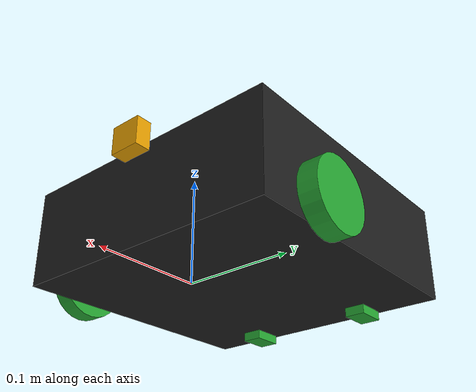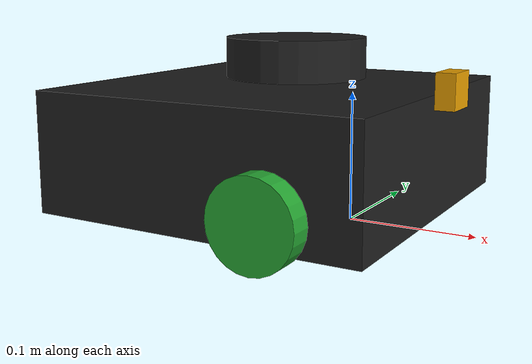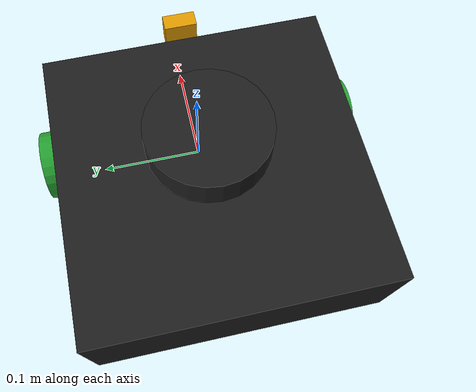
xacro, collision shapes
<?xml version="1.0" ?>
<robot name="p_jfernandes" xmlns:xacro="http://ros.org/wiki/xacro">
    <xacro:include filename="$(find turtlebot3_description)/urdf/common_properties.xacro"/>
    <xacro:include filename="$(find green_turtlebot3)/urdf/green_turtlebot3.gazebo.xacro"/>
    <xacro:property name="top_length" value="0.03"/>

    <xacro:property name="robot_name" value="green/"/>

    <link name="${robot_name}base_footprint"/>

    <joint name="base_joint" type="fixed">
        <parent link="${robot_name}base_footprint"/>
        <child link="${robot_name}base_link"/>
        <origin xyz="0 0 0.010" rpy="0 0 0"/>
    </joint>

    <link name="${robot_name}base_link">
        <visual>
            <origin xyz="-0.064 0 0.0" rpy="0 0 0"/>
            <geometry>
                <mesh filename="package://turtlebot3_description/meshes/bases/waffle_pi_base.stl"
                      scale="0.001 0.001 0.001"/>
            </geometry>
            <material name="light_black"/>
        </visual>

        <collision>
            <origin xyz="-0.064 0 0.047" rpy="0 0 0"/>
            <geometry>
                <box size="0.266 0.266 0.094"/>
            </geometry>
        </collision>

        <inertial>
            <origin xyz="0 0 0" rpy="0 0 0"/>
            <mass value="1.3729096e+00"/>
            <inertia ixx="8.7002718e-03" ixy="-4.7576583e-05" ixz="1.1160499e-04"
                     iyy="8.6195418e-03" iyz="-3.5422299e-06"
                     izz="1.4612727e-02"/>
        </inertial>
    </link>

    <!--    &lt;!&ndash;    add blue element   ********************** &ndash;&gt;-->

    <!--    &lt;!&ndash;    ************************************************&ndash;&gt;-->

    <joint name="wheel_left_joint" type="continuous">
        <parent link="${robot_name}base_link"/>
        <child link="${robot_name}wheel_left_link"/>
        <origin xyz="0.0 0.144 0.023" rpy="-1.57 0 0"/>
        <axis xyz="0 0 1"/>
    </joint>

    <link name="${robot_name}wheel_left_link">
        <visual>
            <origin xyz="0 0 0" rpy="1.57 0 0"/>
            <geometry>
                <mesh filename="package://turtlebot3_description/meshes/wheels/left_tire.stl"
                      scale="0.001 0.001 0.001"/>
            </geometry>
            <material name="dark"/>
        </visual>

        <collision>
            <origin xyz="0 0 0" rpy="0 0 0"/>
            <geometry>
                <cylinder length="0.018" radius="0.033"/>
            </geometry>
        </collision>

        <inertial>
            <origin xyz="0 0 0"/>
            <mass value="2.8498940e-02"/>
            <inertia ixx="1.1175580e-05" ixy="-4.2369783e-11" ixz="-5.9381719e-09"
                     iyy="1.1192413e-05" iyz="-1.4400107e-11"
                     izz="2.0712558e-05"/>
        </inertial>
    </link>

    <joint name="wheel_right_joint" type="continuous">
        <parent link="${robot_name}base_link"/>
        <child link="${robot_name}wheel_right_link"/>
        <origin xyz="0.0 -0.144 0.023" rpy="-1.57 0 0"/>
        <axis xyz="0 0 1"/>
    </joint>

    <link name="${robot_name}wheel_right_link">
        <visual>
            <origin xyz="0 0 0" rpy="1.57 0 0"/>
            <geometry>
                <mesh filename="package://turtlebot3_description/meshes/wheels/right_tire.stl"
                      scale="0.001 0.001 0.001"/>
            </geometry>
            <material name="dark"/>
        </visual>

        <collision>
            <origin xyz="0 0 0" rpy="0 0 0"/>
            <geometry>
                <cylinder length="0.018" radius="0.033"/>
            </geometry>
        </collision>

        <inertial>
            <origin xyz="0 0 0"/>
            <mass value="2.8498940e-02"/>
            <inertia ixx="1.1175580e-05" ixy="-4.2369783e-11" ixz="-5.9381719e-09"
                     iyy="1.1192413e-05" iyz="-1.4400107e-11"
                     izz="2.0712558e-05"/>
        </inertial>
    </link>

    <joint name="caster_back_right_joint" type="fixed">
        <parent link="${robot_name}base_link"/>
        <child link="${robot_name}caster_back_right_link"/>
        <origin xyz="-0.177 -0.064 -0.004" rpy="-1.57 0 0"/>
    </joint>

    <link name="${robot_name}caster_back_right_link">
        <collision>
            <origin xyz="0 0.001 0" rpy="0 0 0"/>
            <geometry>
                <box size="0.030 0.009 0.020"/>
            </geometry>
        </collision>

        <inertial>
            <origin xyz="0 0 0"/>
            <mass value="0.005"/>
            <inertia ixx="0.001" ixy="0.0" ixz="0.0"
                     iyy="0.001" iyz="0.0"
                     izz="0.001"/>
        </inertial>
    </link>

    <joint name="caster_back_left_joint" type="fixed">
        <parent link="${robot_name}base_link"/>
        <child link="${robot_name}caster_back_left_link"/>
        <origin xyz="-0.177 0.064 -0.004" rpy="-1.57 0 0"/>
    </joint>

    <link name="${robot_name}caster_back_left_link">
        <collision>
            <origin xyz="0 0.001 0" rpy="0 0 0"/>
            <geometry>
                <box size="0.030 0.009 0.020"/>
            </geometry>
        </collision>

        <inertial>
            <origin xyz="0 0 0"/>
            <mass value="0.005"/>
            <inertia ixx="0.001" ixy="0.0" ixz="0.0"
                     iyy="0.001" iyz="0.0"
                     izz="0.001"/>
        </inertial>
    </link>

    <joint name="imu_joint" type="fixed">
        <parent link="${robot_name}base_link"/>
        <child link="${robot_name}imu_link"/>
        <origin xyz="0.0 0 0.068" rpy="0 0 0"/>
    </joint>

    <link name="${robot_name}imu_link"/>

    <joint name="scan_joint" type="fixed">
        <parent link="${robot_name}base_link"/>
        <child link="${robot_name}base_scan"/>
        <origin xyz="-0.064 0 0.122" rpy="0 0 0"/>
    </joint>

    <link name="${robot_name}base_scan">
        <visual>
            <origin xyz="0 0 0.0" rpy="0 0 0"/>
            <geometry>
                <mesh filename="package://turtlebot3_description/meshes/sensors/lds.stl" scale="0.001 0.001 0.001"/>
            </geometry>
            <material name="dark"/>
        </visual>

        <collision>
            <origin xyz="0.015 0 -0.0065" rpy="0 0 0"/>
            <geometry>
                <cylinder length="0.0315" radius="0.055"/>
            </geometry>
        </collision>

        <inertial>
            <mass value="0.114"/>
            <origin xyz="0 0 0"/>
            <inertia ixx="0.001" ixy="0.0" ixz="0.0"
                     iyy="0.001" iyz="0.0"
                     izz="0.001"/>
        </inertial>
    </link>

    <joint name="camera_joint" type="fixed">
        <origin xyz="0.073 -0.011 0.084" rpy="0 0 0"/>
        <parent link="${robot_name}base_link"/>
        <child link="${robot_name}camera_link"/>
    </joint>

    <link name="${robot_name}camera_link">
        <collision>
            <origin xyz="0.005 0.011 0.013" rpy="0 0 0"/>
            <geometry>
                <box size="0.015 0.030 0.027"/>
            </geometry>
        </collision>
    </link>

    <joint name="camera_rgb_joint" type="fixed">
        <origin xyz="0.003 0.011 0.009" rpy="0 0 0"/>
        <parent link="${robot_name}camera_link"/>
        <child link="${robot_name}camera_rgb_frame"/>
    </joint>

    <link name="${robot_name}camera_rgb_frame"/>

    <joint name="camera_rgb_optical_joint" type="fixed">
        <origin xyz="0 0 0" rpy="-1.57 0 -1.57"/>
        <parent link="${robot_name}camera_rgb_frame"/>
        <child link="${robot_name}camera_rgb_optical_frame"/>
    </joint>

    <link name="${robot_name}camera_rgb_optical_frame"/>

</robot>

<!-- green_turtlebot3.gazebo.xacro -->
<robot name="green_turtlebot3_sim" xmlns:xacro="http://ros.org/wiki/xacro">
    <xacro:arg name="laser_visual" default="false"/>
    <xacro:arg name="camera_visual" default="false"/>
    <xacro:arg name="imu_visual" default="false"/>

    <!--    robot main color-->
    <xacro:arg name="main_color" default="Green"/>

    <xacro:property name="robot_name" value="green/"/>

    <gazebo reference="${robot_name}base_link">
        <material>Gazebo/$(arg main_color)</material>
    </gazebo>

    <gazebo reference="${robot_name}wheel_left_link">
        <mu1>0.1</mu1>
        <mu2>0.1</mu2>
        <kp>500000.0</kp>
        <kd>10.0</kd>
        <minDepth>0.001</minDepth>
        <maxVel>0.1</maxVel>
        <fdir1>1 0 0</fdir1>
        <material>Gazebo/$(arg main_color)</material>
    </gazebo>

    <gazebo reference="${robot_name}wheel_right_link">
        <mu1>0.1</mu1>
        <mu2>0.1</mu2>
        <kp>500000.0</kp>
        <kd>10.0</kd>
        <minDepth>0.001</minDepth>
        <maxVel>0.1</maxVel>
        <fdir1>1 0 0</fdir1>
        <material>Gazebo/$(arg main_color)</material>
    </gazebo>

    <gazebo reference="${robot_name}caster_back_right_link">
        <mu1>0.1</mu1>
        <mu2>0.1</mu2>
        <kp>1000000.0</kp>
        <kd>100.0</kd>
        <minDepth>0.001</minDepth>
        <maxVel>1.0</maxVel>
        <material>Gazebo/$(arg main_color)</material>
    </gazebo>

    <gazebo reference="${robot_name}caster_back_left_link">
        <mu1>0.1</mu1>
        <mu2>0.1</mu2>
        <kp>1000000.0</kp>
        <kd>100.0</kd>
        <minDepth>0.001</minDepth>
        <maxVel>1.0</maxVel>
        <material>Gazebo/$(arg main_color)</material>
    </gazebo>

    <gazebo reference="${robot_name}imu_link">
        <sensor type="imu" name="imu">
            <always_on>true</always_on>
            <visualize>$(arg imu_visual)</visualize>
        </sensor>
        <material>Gazebo/Grey</material>
    </gazebo>

    <gazebo>
        <plugin name="turtlebot3_waffle_pi_controller" filename="libgazebo_ros_diff_drive.so">
            <commandTopic>${robot_name}cmd_vel</commandTopic>
            <odometryTopic>odom</odometryTopic>
            <odometryFrame>${robot_name}odom</odometryFrame>
            <odometrySource>world</odometrySource>
            <publishOdomTF>true</publishOdomTF>
            <robotBaseFrame>${robot_name}base_footprint</robotBaseFrame>
            <publishWheelTF>false</publishWheelTF>
            <publishTf>true</publishTf>
            <publishWheelJointState>true</publishWheelJointState>
            <legacyMode>false</legacyMode>
            <alwaysOn>true</alwaysOn>
            <updateRate>30</updateRate>
            <leftJoint>wheel_left_joint</leftJoint>
            <rightJoint>wheel_right_joint</rightJoint>
            <wheelSeparation>0.287</wheelSeparation>
            <wheelDiameter>0.066</wheelDiameter>
            <wheelAcceleration>1</wheelAcceleration>
            <wheelTorque>10</wheelTorque>
            <rosDebugLevel>na</rosDebugLevel>
        </plugin>
    </gazebo>

    <gazebo>
        <plugin name="imu_plugin" filename="libgazebo_ros_imu.so">
            <alwaysOn>true</alwaysOn>
            <bodyName>${robot_name}imu_link</bodyName>
            <frameName>${robot_name}imu_link</frameName>
            <topicName>${robot_name}imu</topicName>
            <serviceName>${robot_name}imu_service</serviceName>
            <gaussianNoise>0.0</gaussianNoise>
            <updateRate>0</updateRate>
            <imu>
                <noise>
                    <type>gaussian</type>
                    <rate>
                        <mean>0.0</mean>
                        <stddev>2e-4</stddev>
                        <bias_mean>0.0000075</bias_mean>
                        <bias_stddev>0.0000008</bias_stddev>
                    </rate>
                    <accel>
                        <mean>0.0</mean>
                        <stddev>1.7e-2</stddev>
                        <bias_mean>0.1</bias_mean>
                        <bias_stddev>0.001</bias_stddev>
                    </accel>
                </noise>
            </imu>
        </plugin>
    </gazebo>

    <gazebo reference="${robot_name}base_scan">
        <material>Gazebo/FlatBlack</material>
        <sensor type="ray" name="lds_lfcd_sensor">
            <pose>0 0 0 0 0 0</pose>
            <visualize>$(arg laser_visual)</visualize>
            <update_rate>5</update_rate>
            <ray>
                <scan>
                    <horizontal>
                        <samples>360</samples>
                        <resolution>1</resolution>
                        <min_angle>0.0</min_angle>
                        <max_angle>6.28319</max_angle>
                    </horizontal>
                </scan>
                <range>
                    <min>0.120</min>
                    <max>3.5</max>
                    <resolution>0.015</resolution>
                </range>
                <noise>
                    <type>gaussian</type>
                    <mean>0.0</mean>
                    <stddev>0.01</stddev>
                </noise>
            </ray>
            <plugin name="gazebo_ros_lds_lfcd_controller" filename="libgazebo_ros_laser.so">
                <topicName>${robot_name}scan</topicName>
                <frameName>${robot_name}base_scan</frameName>
            </plugin>
        </sensor>
    </gazebo>

    <!--link : https://www.raspberrypi.org/documentation/hardware/camera/-->
    <gazebo reference="${robot_name}camera_rgb_frame">
        <sensor type="camera" name="Pi Camera">
            <always_on>true</always_on>
            <visualize>$(arg camera_visual)</visualize>
            <camera>
                <horizontal_fov>1.085595</horizontal_fov>
                <image>
                    <width>1000</width>
                    <height>800</height>
                    <format>R8G8B8</format>
                </image>
                <clip>
                    <near>0.03</near>
                    <far>100</far>
                </clip>
            </camera>
            <plugin name="camera_controller" filename="libgazebo_ros_camera.so">
                <alwaysOn>true</alwaysOn>
                <updateRate>30.0</updateRate>
                <cameraName>${robot_name}camera</cameraName>
                <frameName>${robot_name}camera_rgb_optical_frame</frameName>
                <imageTopicName>rgb/image_raw</imageTopicName>
                <cameraInfoTopicName>rgb/camera_info</cameraInfoTopicName>
                <hackBaseline>0.07</hackBaseline>
                <distortionK1>0.0</distortionK1>
                <distortionK2>0.0</distortionK2>
                <distortionK3>0.0</distortionK3>
                <distortionT1>0.0</distortionT1>
                <distortionT2>0.0</distortionT2>
            </plugin>
        </sensor>
    </gazebo>

</robot>
